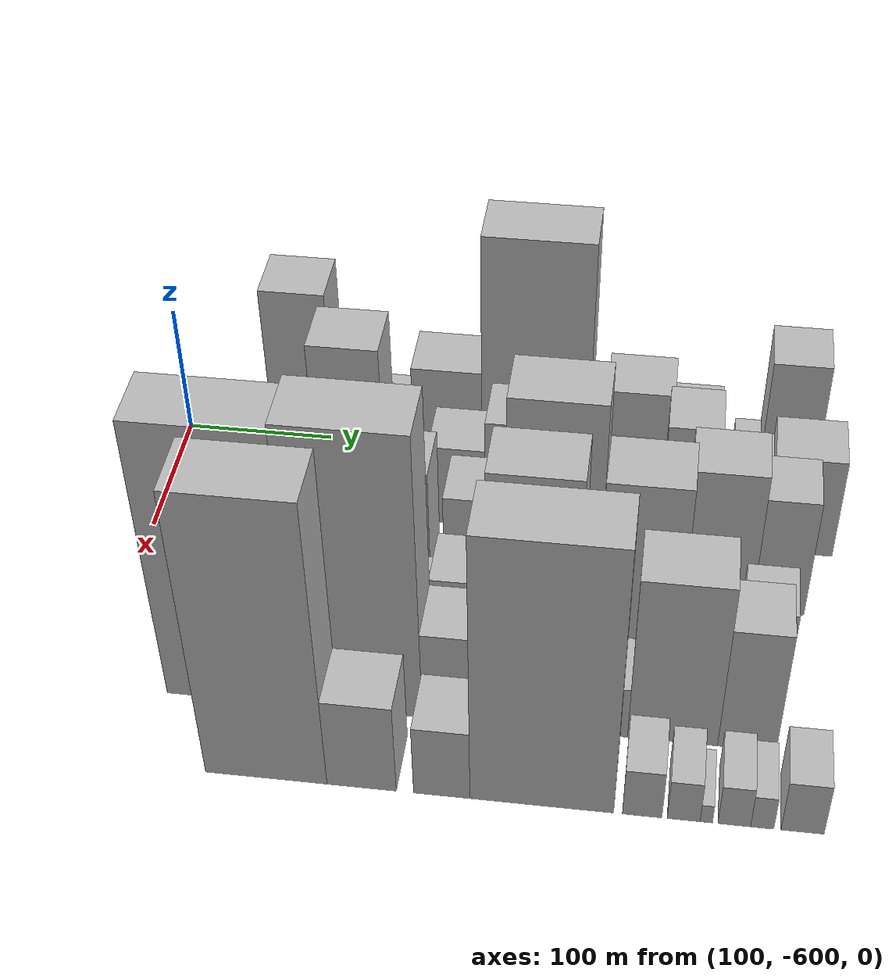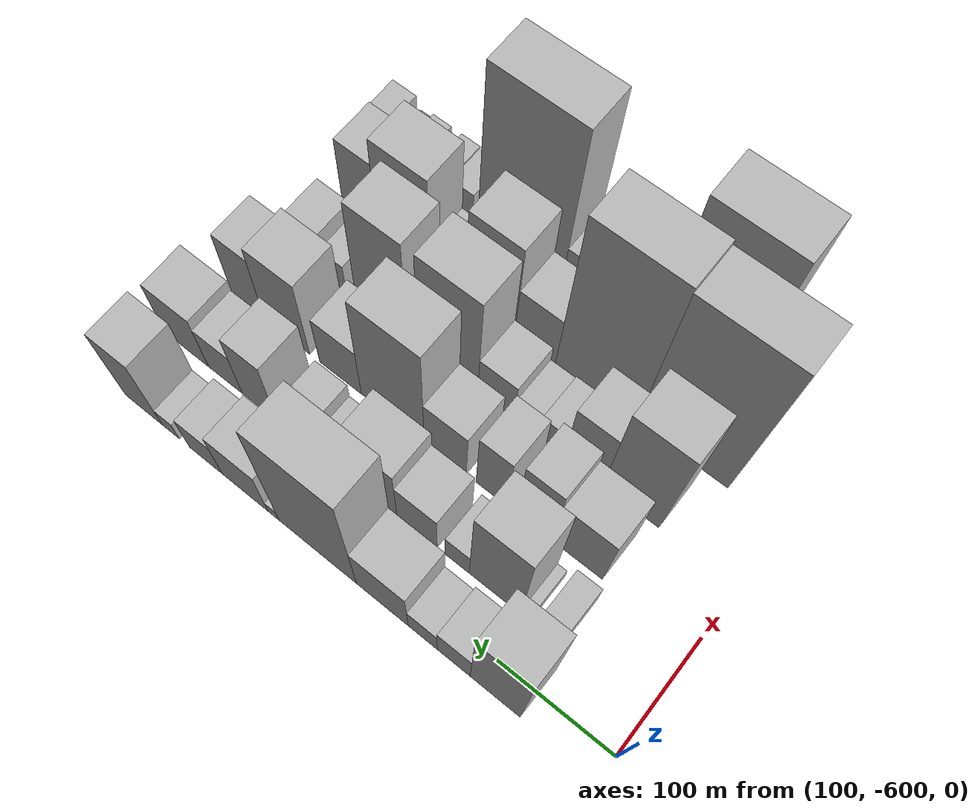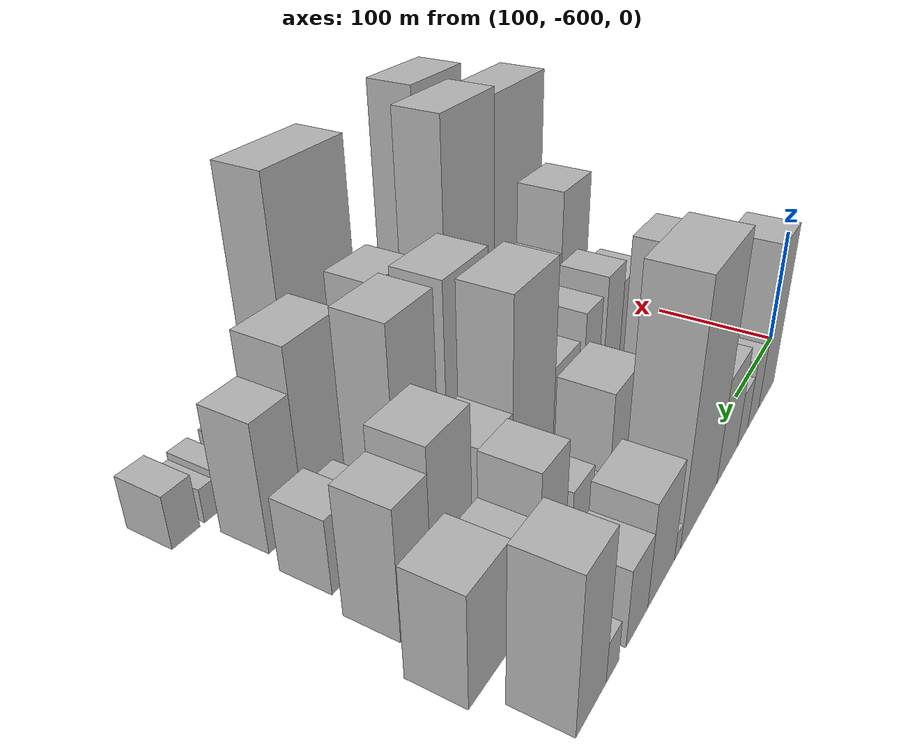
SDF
<sdf version="1.6">
 <world name="default">
  <model name="building_15">
   <static>1</static>
   <pose>100.0000 -513.6216 0 0.000000 0.000000 0.000000</pose>
   <link name="link">
    <pose>0 0 69.00 0 0 0</pose>
    <collision name="collision"><geometry><box><size>40.0000 42.8740 138.0000</size></box></geometry></collision>
    <visual name="visual">
     <cast_shadows>0</cast_shadows>
     <geometry><box><size>40.0000 42.8740 138.0000</size></box></geometry>
     <material>
      <script>
       <uri>model://HANNAS_wall/materials/scripts</uri>
       <uri>model://HANNAS_wall/materials/textures</uri>
       <name>vrc/HANNAS_wall</name>
      </script>
     </material>
    </visual>
   </link>
  </model>
  <model name="building_16">
   <static>1</static>
   <pose>100.0000 -477.8767 0 0.000000 0.000000 0.000000</pose>
   <link name="link">
    <pose>0 0 28.50 0 0 0</pose>
    <collision name="collision"><geometry><box><size>40.0000 28.6157 57.0000</size></box></geometry></collision>
    <visual name="visual">
     <cast_shadows>0</cast_shadows>
     <geometry><box><size>40.0000 28.6157 57.0000</size></box></geometry>
     <material>
      <script>
       <uri>model://HANNAS_wall/materials/scripts</uri>
       <uri>model://HANNAS_wall/materials/textures</uri>
       <name>vrc/HANNAS_wall</name>
      </script>
     </material>
    </visual>
   </link>
  </model>
  <model name="building_17">
   <static>1</static>
   <pose>100.0000 -450.7603 0 0.000000 0.000000 0.000000</pose>
   <link name="link">
    <pose>0 0 22.50 0 0 0</pose>
    <collision name="collision"><geometry><box><size>40.0000 25.6171 45.0000</size></box></geometry></collision>
    <visual name="visual">
     <cast_shadows>0</cast_shadows>
     <geometry><box><size>40.0000 25.6171 45.0000</size></box></geometry>
     <material>
      <script>
       <uri>model://HANNAS_wall/materials/scripts</uri>
       <uri>model://HANNAS_wall/materials/textures</uri>
       <name>vrc/HANNAS_wall</name>
      </script>
     </material>
    </visual>
   </link>
  </model>
  <model name="building_18">
   <static>1</static>
   <pose>100.0000 -414.6206 0 0.000000 0.000000 0.000000</pose>
   <link name="link">
    <pose>0 0 42.00 0 0 0</pose>
    <collision name="collision"><geometry><box><size>40.0000 46.6623 84.0000</size></box></geometry></collision>
    <visual name="visual">
     <cast_shadows>0</cast_shadows>
     <geometry><box><size>40.0000 46.6623 84.0000</size></box></geometry>
     <material>
      <script>
       <uri>model://HANNAS_wall/materials/scripts</uri>
       <uri>model://HANNAS_wall/materials/textures</uri>
       <name>vrc/HANNAS_wall</name>
      </script>
     </material>
    </visual>
   </link>
  </model>
  <model name="building_19">
   <static>1</static>
   <pose>100.0000 -355.2714 0 0.000000 0.000000 0.000000</pose>
   <link name="link">
    <pose>0 0 96.00 0 0 0</pose>
    <collision name="collision"><geometry><box><size>40.0000 72.0362 192.0000</size></box></geometry></collision>
    <visual name="visual">
     <cast_shadows>0</cast_shadows>
     <geometry><box><size>40.0000 72.0362 192.0000</size></box></geometry>
     <material>
      <script>
       <uri>model://HANNAS_wall/materials/scripts</uri>
       <uri>model://HANNAS_wall/materials/textures</uri>
       <name>vrc/HANNAS_wall</name>
      </script>
     </material>
    </visual>
   </link>
  </model>
  <model name="building_20">
   <static>1</static>
   <pose>100.0000 -314.0269 0 0.000000 0.000000 0.000000</pose>
   <link name="link">
    <pose>0 0 10.50 0 0 0</pose>
    <collision name="collision"><geometry><box><size>40.0000 10.4528 21.0000</size></box></geometry></collision>
    <visual name="visual">
     <cast_shadows>0</cast_shadows>
     <geometry><box><size>40.0000 10.4528 21.0000</size></box></geometry>
     <material>
      <script>
       <uri>model://HANNAS_wall/materials/scripts</uri>
       <uri>model://HANNAS_wall/materials/textures</uri>
       <name>vrc/HANNAS_wall</name>
      </script>
     </material>
    </visual>
   </link>
  </model>
  <model name="building_21">
   <static>1</static>
   <pose>100.0000 -286.6192 0 0.000000 0.000000 0.000000</pose>
   <link name="link">
    <pose>0 0 39.00 0 0 0</pose>
    <collision name="collision"><geometry><box><size>40.0000 44.3624 78.0000</size></box></geometry></collision>
    <visual name="visual">
     <cast_shadows>0</cast_shadows>
     <geometry><box><size>40.0000 44.3624 78.0000</size></box></geometry>
     <material>
      <script>
       <uri>model://HANNAS_wall/materials/scripts</uri>
       <uri>model://HANNAS_wall/materials/textures</uri>
       <name>vrc/HANNAS_wall</name>
      </script>
     </material>
    </visual>
   </link>
  </model>
  <model name="building_22">
   <static>1</static>
   <pose>100.0000 -248.2549 0 0.000000 0.000000 0.000000</pose>
   <link name="link">
    <pose>0 0 28.50 0 0 0</pose>
    <collision name="collision"><geometry><box><size>40.0000 32.3662 57.0000</size></box></geometry></collision>
    <visual name="visual">
     <cast_shadows>0</cast_shadows>
     <geometry><box><size>40.0000 32.3662 57.0000</size></box></geometry>
     <material>
      <script>
       <uri>model://HANNAS_wall/materials/scripts</uri>
       <uri>model://HANNAS_wall/materials/textures</uri>
       <name>vrc/HANNAS_wall</name>
      </script>
     </material>
    </visual>
   </link>
  </model>
  <model name="building_23">
   <static>1</static>
   <pose>100.0000 -213.4793 0 0.000000 0.000000 0.000000</pose>
   <link name="link">
    <pose>0 0 15.00 0 0 0</pose>
    <collision name="collision"><geometry><box><size>40.0000 17.1850 30.0000</size></box></geometry></collision>
    <visual name="visual">
     <cast_shadows>0</cast_shadows>
     <geometry><box><size>40.0000 17.1850 30.0000</size></box></geometry>
     <material>
      <script>
       <uri>model://HANNAS_wall/materials/scripts</uri>
       <uri>model://HANNAS_wall/materials/textures</uri>
       <name>vrc/HANNAS_wall</name>
      </script>
     </material>
    </visual>
   </link>
  </model>
  <model name="building_24">
   <static>1</static>
   <pose>100.0000 -186.1850 0 0.000000 0.000000 0.000000</pose>
   <link name="link">
    <pose>0 0 55.50 0 0 0</pose>
    <collision name="collision"><geometry><box><size>40.0000 37.4036 111.0000</size></box></geometry></collision>
    <visual name="visual">
     <cast_shadows>0</cast_shadows>
     <geometry><box><size>40.0000 37.4036 111.0000</size></box></geometry>
     <material>
      <script>
       <uri>model://HANNAS_wall/materials/scripts</uri>
       <uri>model://HANNAS_wall/materials/textures</uri>
       <name>vrc/HANNAS_wall</name>
      </script>
     </material>
    </visual>
   </link>
  </model>
  <model name="building_60">
   <static>1</static>
   <pose>155.0000 -517.8775 0 0.000000 0.000000 0.000000</pose>
   <link name="link">
    <pose>0 0 19.50 0 0 0</pose>
    <collision name="collision"><geometry><box><size>40.0000 21.1955 39.0000</size></box></geometry></collision>
    <visual name="visual">
     <cast_shadows>0</cast_shadows>
     <geometry><box><size>40.0000 21.1955 39.0000</size></box></geometry>
     <material>
      <script>
       <uri>model://HANNAS_wall/materials/scripts</uri>
       <uri>model://HANNAS_wall/materials/textures</uri>
       <name>vrc/HANNAS_wall</name>
      </script>
     </material>
    </visual>
   </link>
  </model>
  <model name="building_61">
   <static>1</static>
   <pose>155.0000 -497.1869 0 0.000000 0.000000 0.000000</pose>
   <link name="link">
    <pose>0 0 9.00 0 0 0</pose>
    <collision name="collision"><geometry><box><size>40.0000 8.1856 18.0000</size></box></geometry></collision>
    <visual name="visual">
     <cast_shadows>0</cast_shadows>
     <geometry><box><size>40.0000 8.1856 18.0000</size></box></geometry>
     <material>
      <script>
       <uri>model://HANNAS_wall/materials/scripts</uri>
       <uri>model://HANNAS_wall/materials/textures</uri>
       <name>vrc/HANNAS_wall</name>
      </script>
     </material>
    </visual>
   </link>
  </model>
  <model name="building_62">
   <static>1</static>
   <pose>155.0000 -470.3761 0 0.000000 0.000000 0.000000</pose>
   <link name="link">
    <pose>0 0 70.50 0 0 0</pose>
    <collision name="collision"><geometry><box><size>40.0000 45.4361 141.0000</size></box></geometry></collision>
    <visual name="visual">
     <cast_shadows>0</cast_shadows>
     <geometry><box><size>40.0000 45.4361 141.0000</size></box></geometry>
     <material>
      <script>
       <uri>model://HANNAS_wall/materials/scripts</uri>
       <uri>model://HANNAS_wall/materials/textures</uri>
       <name>vrc/HANNAS_wall</name>
      </script>
     </material>
    </visual>
   </link>
  </model>
  <model name="building_63">
   <static>1</static>
   <pose>155.0000 -436.8138 0 0.000000 0.000000 0.000000</pose>
   <link name="link">
    <pose>0 0 21.00 0 0 0</pose>
    <collision name="collision"><geometry><box><size>40.0000 21.6886 42.0000</size></box></geometry></collision>
    <visual name="visual">
     <cast_shadows>0</cast_shadows>
     <geometry><box><size>40.0000 21.6886 42.0000</size></box></geometry>
     <material>
      <script>
       <uri>model://HANNAS_wall/materials/scripts</uri>
       <uri>model://HANNAS_wall/materials/textures</uri>
       <name>vrc/HANNAS_wall</name>
      </script>
     </material>
    </visual>
   </link>
  </model>
  <model name="building_64">
   <static>1</static>
   <pose>155.0000 -400.5244 0 0.000000 0.000000 0.000000</pose>
   <link name="link">
    <pose>0 0 33.00 0 0 0</pose>
    <collision name="collision"><geometry><box><size>40.0000 36.8902 66.0000</size></box></geometry></collision>
    <visual name="visual">
     <cast_shadows>0</cast_shadows>
     <geometry><box><size>40.0000 36.8902 66.0000</size></box></geometry>
     <material>
      <script>
       <uri>model://HANNAS_wall/materials/scripts</uri>
       <uri>model://HANNAS_wall/materials/textures</uri>
       <name>vrc/HANNAS_wall</name>
      </script>
     </material>
    </visual>
   </link>
  </model>
  <model name="building_65">
   <static>1</static>
   <pose>155.0000 -357.3834 0 0.000000 0.000000 0.000000</pose>
   <link name="link">
    <pose>0 0 45.00 0 0 0</pose>
    <collision name="collision"><geometry><box><size>40.0000 49.3919 90.0000</size></box></geometry></collision>
    <visual name="visual">
     <cast_shadows>0</cast_shadows>
     <geometry><box><size>40.0000 49.3919 90.0000</size></box></geometry>
     <material>
      <script>
       <uri>model://HANNAS_wall/materials/scripts</uri>
       <uri>model://HANNAS_wall/materials/textures</uri>
       <name>vrc/HANNAS_wall</name>
      </script>
     </material>
    </visual>
   </link>
  </model>
  <model name="building_66">
   <static>1</static>
   <pose>155.0000 -329.3998 0 0.000000 0.000000 0.000000</pose>
   <link name="link">
    <pose>0 0 7.50 0 0 0</pose>
    <collision name="collision"><geometry><box><size>40.0000 6.5753 15.0000</size></box></geometry></collision>
    <visual name="visual">
     <cast_shadows>0</cast_shadows>
     <geometry><box><size>40.0000 6.5753 15.0000</size></box></geometry>
     <material>
      <script>
       <uri>model://HANNAS_wall/materials/scripts</uri>
       <uri>model://HANNAS_wall/materials/textures</uri>
       <name>vrc/HANNAS_wall</name>
      </script>
     </material>
    </visual>
   </link>
  </model>
  <model name="building_67">
   <static>1</static>
   <pose>155.0000 -316.3000 0 0.000000 0.000000 0.000000</pose>
   <link name="link">
    <pose>0 0 16.50 0 0 0</pose>
    <collision name="collision"><geometry><box><size>40.0000 19.6243 33.0000</size></box></geometry></collision>
    <visual name="visual">
     <cast_shadows>0</cast_shadows>
     <geometry><box><size>40.0000 19.6243 33.0000</size></box></geometry>
     <material>
      <script>
       <uri>model://HANNAS_wall/materials/scripts</uri>
       <uri>model://HANNAS_wall/materials/textures</uri>
       <name>vrc/HANNAS_wall</name>
      </script>
     </material>
    </visual>
   </link>
  </model>
  <model name="building_68">
   <static>1</static>
   <pose>155.0000 -291.5817 0 0.000000 0.000000 0.000000</pose>
   <link name="link">
    <pose>0 0 27.00 0 0 0</pose>
    <collision name="collision"><geometry><box><size>40.0000 29.8122 54.0000</size></box></geometry></collision>
    <visual name="visual">
     <cast_shadows>0</cast_shadows>
     <geometry><box><size>40.0000 29.8122 54.0000</size></box></geometry>
     <material>
      <script>
       <uri>model://HANNAS_wall/materials/scripts</uri>
       <uri>model://HANNAS_wall/materials/textures</uri>
       <name>vrc/HANNAS_wall</name>
      </script>
     </material>
    </visual>
   </link>
  </model>
  <model name="building_69">
   <static>1</static>
   <pose>155.0000 -250.6024 0 0.000000 0.000000 0.000000</pose>
   <link name="link">
    <pose>0 0 49.50 0 0 0</pose>
    <collision name="collision"><geometry><box><size>40.0000 34.1465 99.0000</size></box></geometry></collision>
    <visual name="visual">
     <cast_shadows>0</cast_shadows>
     <geometry><box><size>40.0000 34.1465 99.0000</size></box></geometry>
     <material>
      <script>
       <uri>model://HANNAS_wall/materials/scripts</uri>
       <uri>model://HANNAS_wall/materials/textures</uri>
       <name>vrc/HANNAS_wall</name>
      </script>
     </material>
    </visual>
   </link>
  </model>
  <model name="building_70">
   <static>1</static>
   <pose>155.0000 -216.5741 0 0.000000 0.000000 0.000000</pose>
   <link name="link">
    <pose>0 0 33.00 0 0 0</pose>
    <collision name="collision"><geometry><box><size>40.0000 33.9102 66.0000</size></box></geometry></collision>
    <visual name="visual">
     <cast_shadows>0</cast_shadows>
     <geometry><box><size>40.0000 33.9102 66.0000</size></box></geometry>
     <material>
      <script>
       <uri>model://HANNAS_wall/materials/scripts</uri>
       <uri>model://HANNAS_wall/materials/textures</uri>
       <name>vrc/HANNAS_wall</name>
      </script>
     </material>
    </visual>
   </link>
  </model>
  <model name="building_71">
   <static>1</static>
   <pose>155.0000 -177.3842 0 0.000000 0.000000 0.000000</pose>
   <link name="link">
    <pose>0 0 40.50 0 0 0</pose>
    <collision name="collision"><geometry><box><size>40.0000 44.4696 81.0000</size></box></geometry></collision>
    <visual name="visual">
     <cast_shadows>0</cast_shadows>
     <geometry><box><size>40.0000 44.4696 81.0000</size></box></geometry>
     <material>
      <script>
       <uri>model://HANNAS_wall/materials/scripts</uri>
       <uri>model://HANNAS_wall/materials/textures</uri>
       <name>vrc/HANNAS_wall</name>
      </script>
     </material>
    </visual>
   </link>
  </model>
  <model name="building_111">
   <static>1</static>
   <pose>210.0000 -500.7694 0 0.000000 0.000000 0.000000</pose>
   <link name="link">
    <pose>0 0 43.50 0 0 0</pose>
    <collision name="collision"><geometry><box><size>40.0000 43.8269 87.0000</size></box></geometry></collision>
    <visual name="visual">
     <cast_shadows>0</cast_shadows>
     <geometry><box><size>40.0000 43.8269 87.0000</size></box></geometry>
     <material>
      <script>
       <uri>model://HANNAS_wall/materials/scripts</uri>
       <uri>model://HANNAS_wall/materials/textures</uri>
       <name>vrc/HANNAS_wall</name>
      </script>
     </material>
    </visual>
   </link>
  </model>
  <model name="building_112">
   <static>1</static>
   <pose>210.0000 -463.0493 0 0.000000 0.000000 0.000000</pose>
   <link name="link">
    <pose>0 0 52.50 0 0 0</pose>
    <collision name="collision"><geometry><box><size>40.0000 31.6133 105.0000</size></box></geometry></collision>
    <visual name="visual">
     <cast_shadows>0</cast_shadows>
     <geometry><box><size>40.0000 31.6133 105.0000</size></box></geometry>
     <material>
      <script>
       <uri>model://HANNAS_wall/materials/scripts</uri>
       <uri>model://HANNAS_wall/materials/textures</uri>
       <name>vrc/HANNAS_wall</name>
      </script>
     </material>
    </visual>
   </link>
  </model>
  <model name="building_113">
   <static>1</static>
   <pose>210.0000 -442.8718 0 0.000000 0.000000 0.000000</pose>
   <link name="link">
    <pose>0 0 10.50 0 0 0</pose>
    <collision name="collision"><geometry><box><size>40.0000 8.7417 21.0000</size></box></geometry></collision>
    <visual name="visual">
     <cast_shadows>0</cast_shadows>
     <geometry><box><size>40.0000 8.7417 21.0000</size></box></geometry>
     <material>
      <script>
       <uri>model://HANNAS_wall/materials/scripts</uri>
       <uri>model://HANNAS_wall/materials/textures</uri>
       <name>vrc/HANNAS_wall</name>
      </script>
     </material>
    </visual>
   </link>
  </model>
  <model name="building_114">
   <static>1</static>
   <pose>210.0000 -424.3715 0 0.000000 0.000000 0.000000</pose>
   <link name="link">
    <pose>0 0 46.50 0 0 0</pose>
    <collision name="collision"><geometry><box><size>40.0000 28.2588 93.0000</size></box></geometry></collision>
    <visual name="visual">
     <cast_shadows>0</cast_shadows>
     <geometry><box><size>40.0000 28.2588 93.0000</size></box></geometry>
     <material>
      <script>
       <uri>model://HANNAS_wall/materials/scripts</uri>
       <uri>model://HANNAS_wall/materials/textures</uri>
       <name>vrc/HANNAS_wall</name>
      </script>
     </material>
    </visual>
   </link>
  </model>
  <model name="building_115">
   <static>1</static>
   <pose>210.0000 -381.7486 0 0.000000 0.000000 0.000000</pose>
   <link name="link">
    <pose>0 0 37.50 0 0 0</pose>
    <collision name="collision"><geometry><box><size>40.0000 38.9871 75.0000</size></box></geometry></collision>
    <visual name="visual">
     <cast_shadows>0</cast_shadows>
     <geometry><box><size>40.0000 38.9871 75.0000</size></box></geometry>
     <material>
      <script>
       <uri>model://HANNAS_wall/materials/scripts</uri>
       <uri>model://HANNAS_wall/materials/textures</uri>
       <name>vrc/HANNAS_wall</name>
      </script>
     </material>
    </visual>
   </link>
  </model>
  <model name="building_116">
   <static>1</static>
   <pose>210.0000 -332.3035 0 0.000000 0.000000 0.000000</pose>
   <link name="link">
    <pose>0 0 79.50 0 0 0</pose>
    <collision name="collision"><geometry><box><size>40.0000 59.9031 159.0000</size></box></geometry></collision>
    <visual name="visual">
     <cast_shadows>0</cast_shadows>
     <geometry><box><size>40.0000 59.9031 159.0000</size></box></geometry>
     <material>
      <script>
       <uri>model://HANNAS_wall/materials/scripts</uri>
       <uri>model://HANNAS_wall/materials/textures</uri>
       <name>vrc/HANNAS_wall</name>
      </script>
     </material>
    </visual>
   </link>
  </model>
  <model name="building_117">
   <static>1</static>
   <pose>210.0000 -281.9909 0 0.000000 0.000000 0.000000</pose>
   <link name="link">
    <pose>0 0 37.50 0 0 0</pose>
    <collision name="collision"><geometry><box><size>40.0000 40.7219 75.0000</size></box></geometry></collision>
    <visual name="visual">
     <cast_shadows>0</cast_shadows>
     <geometry><box><size>40.0000 40.7219 75.0000</size></box></geometry>
     <material>
      <script>
       <uri>model://HANNAS_wall/materials/scripts</uri>
       <uri>model://HANNAS_wall/materials/textures</uri>
       <name>vrc/HANNAS_wall</name>
      </script>
     </material>
    </visual>
   </link>
  </model>
  <model name="building_118">
   <static>1</static>
   <pose>210.0000 -228.9417 0 0.000000 0.000000 0.000000</pose>
   <link name="link">
    <pose>0 0 57.00 0 0 0</pose>
    <collision name="collision"><geometry><box><size>40.0000 45.3765 114.0000</size></box></geometry></collision>
    <visual name="visual">
     <cast_shadows>0</cast_shadows>
     <geometry><box><size>40.0000 45.3765 114.0000</size></box></geometry>
     <material>
      <script>
       <uri>model://HANNAS_wall/materials/scripts</uri>
       <uri>model://HANNAS_wall/materials/textures</uri>
       <name>vrc/HANNAS_wall</name>
      </script>
     </material>
    </visual>
   </link>
  </model>
  <model name="building_119">
   <static>1</static>
   <pose>210.0000 -190.0148 0 0.000000 0.000000 0.000000</pose>
   <link name="link">
    <pose>0 0 48.00 0 0 0</pose>
    <collision name="collision"><geometry><box><size>40.0000 32.4773 96.0000</size></box></geometry></collision>
    <visual name="visual">
     <cast_shadows>0</cast_shadows>
     <geometry><box><size>40.0000 32.4773 96.0000</size></box></geometry>
     <material>
      <script>
       <uri>model://HANNAS_wall/materials/scripts</uri>
       <uri>model://HANNAS_wall/materials/textures</uri>
       <name>vrc/HANNAS_wall</name>
      </script>
     </material>
    </visual>
   </link>
  </model>
  <model name="building_163">
   <static>1</static>
   <pose>265.0000 -507.3159 0 0.000000 0.000000 0.000000</pose>
   <link name="link">
    <pose>0 0 73.50 0 0 0</pose>
    <collision name="collision"><geometry><box><size>40.0000 49.2319 147.0000</size></box></geometry></collision>
    <visual name="visual">
     <cast_shadows>0</cast_shadows>
     <geometry><box><size>40.0000 49.2319 147.0000</size></box></geometry>
     <material>
      <script>
       <uri>model://HANNAS_wall/materials/scripts</uri>
       <uri>model://HANNAS_wall/materials/textures</uri>
       <name>vrc/HANNAS_wall</name>
      </script>
     </material>
    </visual>
   </link>
  </model>
  <model name="building_164">
   <static>1</static>
   <pose>265.0000 -465.2623 0 0.000000 0.000000 0.000000</pose>
   <link name="link">
    <pose>0 0 48.00 0 0 0</pose>
    <collision name="collision"><geometry><box><size>40.0000 34.8753 96.0000</size></box></geometry></collision>
    <visual name="visual">
     <cast_shadows>0</cast_shadows>
     <geometry><box><size>40.0000 34.8753 96.0000</size></box></geometry>
     <material>
      <script>
       <uri>model://HANNAS_wall/materials/scripts</uri>
       <uri>model://HANNAS_wall/materials/textures</uri>
       <name>vrc/HANNAS_wall</name>
      </script>
     </material>
    </visual>
   </link>
  </model>
  <model name="building_165">
   <static>1</static>
   <pose>265.0000 -436.1185 0 0.000000 0.000000 0.000000</pose>
   <link name="link">
    <pose>0 0 21.00 0 0 0</pose>
    <collision name="collision"><geometry><box><size>40.0000 23.4123 42.0000</size></box></geometry></collision>
    <visual name="visual">
     <cast_shadows>0</cast_shadows>
     <geometry><box><size>40.0000 23.4123 42.0000</size></box></geometry>
     <material>
      <script>
       <uri>model://HANNAS_wall/materials/scripts</uri>
       <uri>model://HANNAS_wall/materials/textures</uri>
       <name>vrc/HANNAS_wall</name>
      </script>
     </material>
    </visual>
   </link>
  </model>
  <model name="building_166">
   <static>1</static>
   <pose>265.0000 -413.1899 0 0.000000 0.000000 0.000000</pose>
   <link name="link">
    <pose>0 0 19.50 0 0 0</pose>
    <collision name="collision"><geometry><box><size>40.0000 22.4448 39.0000</size></box></geometry></collision>
    <visual name="visual">
     <cast_shadows>0</cast_shadows>
     <geometry><box><size>40.0000 22.4448 39.0000</size></box></geometry>
     <material>
      <script>
       <uri>model://HANNAS_wall/materials/scripts</uri>
       <uri>model://HANNAS_wall/materials/textures</uri>
       <name>vrc/HANNAS_wall</name>
      </script>
     </material>
    </visual>
   </link>
  </model>
  <model name="building_167">
   <static>1</static>
   <pose>265.0000 -385.0711 0 0.000000 0.000000 0.000000</pose>
   <link name="link">
    <pose>0 0 30.00 0 0 0</pose>
    <collision name="collision"><geometry><box><size>40.0000 33.7928 60.0000</size></box></geometry></collision>
    <visual name="visual">
     <cast_shadows>0</cast_shadows>
     <geometry><box><size>40.0000 33.7928 60.0000</size></box></geometry>
     <material>
      <script>
       <uri>model://HANNAS_wall/materials/scripts</uri>
       <uri>model://HANNAS_wall/materials/textures</uri>
       <name>vrc/HANNAS_wall</name>
      </script>
     </material>
    </visual>
   </link>
  </model>
  <model name="building_168">
   <static>1</static>
   <pose>265.0000 -339.7269 0 0.000000 0.000000 0.000000</pose>
   <link name="link">
    <pose>0 0 75.00 0 0 0</pose>
    <collision name="collision"><geometry><box><size>40.0000 56.8957 150.0000</size></box></geometry></collision>
    <visual name="visual">
     <cast_shadows>0</cast_shadows>
     <geometry><box><size>40.0000 56.8957 150.0000</size></box></geometry>
     <material>
      <script>
       <uri>model://HANNAS_wall/materials/scripts</uri>
       <uri>model://HANNAS_wall/materials/textures</uri>
       <name>vrc/HANNAS_wall</name>
      </script>
     </material>
    </visual>
   </link>
  </model>
  <model name="building_169">
   <static>1</static>
   <pose>265.0000 -305.8643 0 0.000000 0.000000 0.000000</pose>
   <link name="link">
    <pose>0 0 12.00 0 0 0</pose>
    <collision name="collision"><geometry><box><size>40.0000 10.8294 24.0000</size></box></geometry></collision>
    <visual name="visual">
     <cast_shadows>0</cast_shadows>
     <geometry><box><size>40.0000 10.8294 24.0000</size></box></geometry>
     <material>
      <script>
       <uri>model://HANNAS_wall/materials/scripts</uri>
       <uri>model://HANNAS_wall/materials/textures</uri>
       <name>vrc/HANNAS_wall</name>
      </script>
     </material>
    </visual>
   </link>
  </model>
  <model name="building_170">
   <static>1</static>
   <pose>265.0000 -275.6365 0 0.000000 0.000000 0.000000</pose>
   <link name="link">
    <pose>0 0 75.00 0 0 0</pose>
    <collision name="collision"><geometry><box><size>40.0000 49.6263 150.0000</size></box></geometry></collision>
    <visual name="visual">
     <cast_shadows>0</cast_shadows>
     <geometry><box><size>40.0000 49.6263 150.0000</size></box></geometry>
     <material>
      <script>
       <uri>model://HANNAS_wall/materials/scripts</uri>
       <uri>model://HANNAS_wall/materials/textures</uri>
       <name>vrc/HANNAS_wall</name>
      </script>
     </material>
    </visual>
   </link>
  </model>
  <model name="building_171">
   <static>1</static>
   <pose>265.0000 -229.5233 0 0.000000 0.000000 0.000000</pose>
   <link name="link">
    <pose>0 0 22.50 0 0 0</pose>
    <collision name="collision"><geometry><box><size>40.0000 22.6001 45.0000</size></box></geometry></collision>
    <visual name="visual">
     <cast_shadows>0</cast_shadows>
     <geometry><box><size>40.0000 22.6001 45.0000</size></box></geometry>
     <material>
      <script>
       <uri>model://HANNAS_wall/materials/scripts</uri>
       <uri>model://HANNAS_wall/materials/textures</uri>
       <name>vrc/HANNAS_wall</name>
      </script>
     </material>
    </visual>
   </link>
  </model>
  <model name="building_172">
   <static>1</static>
   <pose>265.0000 -198.6111 0 0.000000 0.000000 0.000000</pose>
   <link name="link">
    <pose>0 0 28.50 0 0 0</pose>
    <collision name="collision"><geometry><box><size>40.0000 31.2242 57.0000</size></box></geometry></collision>
    <visual name="visual">
     <cast_shadows>0</cast_shadows>
     <geometry><box><size>40.0000 31.2242 57.0000</size></box></geometry>
     <material>
      <script>
       <uri>model://HANNAS_wall/materials/scripts</uri>
       <uri>model://HANNAS_wall/materials/textures</uri>
       <name>vrc/HANNAS_wall</name>
      </script>
     </material>
    </visual>
   </link>
  </model>
  <model name="building_209">
   <static>1</static>
   <pose>320.0000 -513.5182 0 0.000000 0.000000 0.000000</pose>
   <link name="link">
    <pose>0 0 108.00 0 0 0</pose>
    <collision name="collision"><geometry><box><size>40.0000 80.4048 216.0000</size></box></geometry></collision>
    <visual name="visual">
     <cast_shadows>0</cast_shadows>
     <geometry><box><size>40.0000 80.4048 216.0000</size></box></geometry>
     <material>
      <script>
       <uri>model://HANNAS_wall/materials/scripts</uri>
       <uri>model://HANNAS_wall/materials/textures</uri>
       <name>vrc/HANNAS_wall</name>
      </script>
     </material>
    </visual>
   </link>
  </model>
  <model name="building_210">
   <static>1</static>
   <pose>320.0000 -436.0626 0 0.000000 0.000000 0.000000</pose>
   <link name="link">
    <pose>0 0 111.00 0 0 0</pose>
    <collision name="collision"><geometry><box><size>40.0000 74.5065 222.0000</size></box></geometry></collision>
    <visual name="visual">
     <cast_shadows>0</cast_shadows>
     <geometry><box><size>40.0000 74.5065 222.0000</size></box></geometry>
     <material>
      <script>
       <uri>model://HANNAS_wall/materials/scripts</uri>
       <uri>model://HANNAS_wall/materials/textures</uri>
       <name>vrc/HANNAS_wall</name>
      </script>
     </material>
    </visual>
   </link>
  </model>
  <model name="building_211">
   <static>1</static>
   <pose>320.0000 -379.5931 0 0.000000 0.000000 0.000000</pose>
   <link name="link">
    <pose>0 0 36.00 0 0 0</pose>
    <collision name="collision"><geometry><box><size>40.0000 38.4325 72.0000</size></box></geometry></collision>
    <visual name="visual">
     <cast_shadows>0</cast_shadows>
     <geometry><box><size>40.0000 38.4325 72.0000</size></box></geometry>
     <material>
      <script>
       <uri>model://HANNAS_wall/materials/scripts</uri>
       <uri>model://HANNAS_wall/materials/textures</uri>
       <name>vrc/HANNAS_wall</name>
      </script>
     </material>
    </visual>
   </link>
  </model>
  <model name="building_212">
   <static>1</static>
   <pose>320.0000 -336.6073 0 0.000000 0.000000 0.000000</pose>
   <link name="link">
    <pose>0 0 66.00 0 0 0</pose>
    <collision name="collision"><geometry><box><size>40.0000 47.5390 132.0000</size></box></geometry></collision>
    <visual name="visual">
     <cast_shadows>0</cast_shadows>
     <geometry><box><size>40.0000 47.5390 132.0000</size></box></geometry>
     <material>
      <script>
       <uri>model://HANNAS_wall/materials/scripts</uri>
       <uri>model://HANNAS_wall/materials/textures</uri>
       <name>vrc/HANNAS_wall</name>
      </script>
     </material>
    </visual>
   </link>
  </model>
  <model name="building_213">
   <static>1</static>
   <pose>320.0000 -306.9684 0 0.000000 0.000000 0.000000</pose>
   <link name="link">
    <pose>0 0 12.00 0 0 0</pose>
    <collision name="collision"><geometry><box><size>40.0000 11.7388 24.0000</size></box></geometry></collision>
    <visual name="visual">
     <cast_shadows>0</cast_shadows>
     <geometry><box><size>40.0000 11.7388 24.0000</size></box></geometry>
     <material>
      <script>
       <uri>model://HANNAS_wall/materials/scripts</uri>
       <uri>model://HANNAS_wall/materials/textures</uri>
       <name>vrc/HANNAS_wall</name>
      </script>
     </material>
    </visual>
   </link>
  </model>
  <model name="building_214">
   <static>1</static>
   <pose>320.0000 -289.1347 0 0.000000 0.000000 0.000000</pose>
   <link name="link">
    <pose>0 0 21.00 0 0 0</pose>
    <collision name="collision"><geometry><box><size>40.0000 23.9287 42.0000</size></box></geometry></collision>
    <visual name="visual">
     <cast_shadows>0</cast_shadows>
     <geometry><box><size>40.0000 23.9287 42.0000</size></box></geometry>
     <material>
      <script>
       <uri>model://HANNAS_wall/materials/scripts</uri>
       <uri>model://HANNAS_wall/materials/textures</uri>
       <name>vrc/HANNAS_wall</name>
      </script>
     </material>
    </visual>
   </link>
  </model>
  <model name="building_215">
   <static>1</static>
   <pose>320.0000 -250.8736 0 0.000000 0.000000 0.000000</pose>
   <link name="link">
    <pose>0 0 66.00 0 0 0</pose>
    <collision name="collision"><geometry><box><size>40.0000 52.5936 132.0000</size></box></geometry></collision>
    <visual name="visual">
     <cast_shadows>0</cast_shadows>
     <geometry><box><size>40.0000 52.5936 132.0000</size></box></geometry>
     <material>
      <script>
       <uri>model://HANNAS_wall/materials/scripts</uri>
       <uri>model://HANNAS_wall/materials/textures</uri>
       <name>vrc/HANNAS_wall</name>
      </script>
     </material>
    </visual>
   </link>
  </model>
  <model name="building_216">
   <static>1</static>
   <pose>320.0000 -207.5885 0 0.000000 0.000000 0.000000</pose>
   <link name="link">
    <pose>0 0 49.50 0 0 0</pose>
    <collision name="collision"><geometry><box><size>40.0000 33.9765 99.0000</size></box></geometry></collision>
    <visual name="visual">
     <cast_shadows>0</cast_shadows>
     <geometry><box><size>40.0000 33.9765 99.0000</size></box></geometry>
     <material>
      <script>
       <uri>model://HANNAS_wall/materials/scripts</uri>
       <uri>model://HANNAS_wall/materials/textures</uri>
       <name>vrc/HANNAS_wall</name>
      </script>
     </material>
    </visual>
   </link>
  </model>
  <model name="building_260">
   <static>1</static>
   <pose>375.0000 -481.0222 0 0.000000 0.000000 0.000000</pose>
   <link name="link">
    <pose>0 0 111.00 0 0 0</pose>
    <collision name="collision"><geometry><box><size>40.0000 71.0292 222.0000</size></box></geometry></collision>
    <visual name="visual">
     <cast_shadows>0</cast_shadows>
     <geometry><box><size>40.0000 71.0292 222.0000</size></box></geometry>
     <material>
      <script>
       <uri>model://HANNAS_wall/materials/scripts</uri>
       <uri>model://HANNAS_wall/materials/textures</uri>
       <name>vrc/HANNAS_wall</name>
      </script>
     </material>
    </visual>
   </link>
  </model>
  <model name="building_261">
   <static>1</static>
   <pose>375.0000 -425.4428 0 0.000000 0.000000 0.000000</pose>
   <link name="link">
    <pose>0 0 36.00 0 0 0</pose>
    <collision name="collision"><geometry><box><size>40.0000 40.1295 72.0000</size></box></geometry></collision>
    <visual name="visual">
     <cast_shadows>0</cast_shadows>
     <geometry><box><size>40.0000 40.1295 72.0000</size></box></geometry>
     <material>
      <script>
       <uri>model://HANNAS_wall/materials/scripts</uri>
       <uri>model://HANNAS_wall/materials/textures</uri>
       <name>vrc/HANNAS_wall</name>
      </script>
     </material>
    </visual>
   </link>
  </model>
  <model name="building_262">
   <static>1</static>
   <pose>375.0000 -379.2287 0 0.000000 0.000000 0.000000</pose>
   <link name="link">
    <pose>0 0 28.50 0 0 0</pose>
    <collision name="collision"><geometry><box><size>40.0000 32.2987 57.0000</size></box></geometry></collision>
    <visual name="visual">
     <cast_shadows>0</cast_shadows>
     <geometry><box><size>40.0000 32.2987 57.0000</size></box></geometry>
     <material>
      <script>
       <uri>model://HANNAS_wall/materials/scripts</uri>
       <uri>model://HANNAS_wall/materials/textures</uri>
       <name>vrc/HANNAS_wall</name>
      </script>
     </material>
    </visual>
   </link>
  </model>
  <model name="building_263">
   <static>1</static>
   <pose>375.0000 -322.2211 0 0.000000 0.000000 0.000000</pose>
   <link name="link">
    <pose>0 0 105.00 0 0 0</pose>
    <collision name="collision"><geometry><box><size>40.0000 81.7166 210.0000</size></box></geometry></collision>
    <visual name="visual">
     <cast_shadows>0</cast_shadows>
     <geometry><box><size>40.0000 81.7166 210.0000</size></box></geometry>
     <material>
      <script>
       <uri>model://HANNAS_wall/materials/scripts</uri>
       <uri>model://HANNAS_wall/materials/textures</uri>
       <name>vrc/HANNAS_wall</name>
      </script>
     </material>
    </visual>
   </link>
  </model>
  <model name="building_264">
   <static>1</static>
   <pose>375.0000 -265.2669 0 0.000000 0.000000 0.000000</pose>
   <link name="link">
    <pose>0 0 19.50 0 0 0</pose>
    <collision name="collision"><geometry><box><size>40.0000 22.1919 39.0000</size></box></geometry></collision>
    <visual name="visual">
     <cast_shadows>0</cast_shadows>
     <geometry><box><size>40.0000 22.1919 39.0000</size></box></geometry>
     <material>
      <script>
       <uri>model://HANNAS_wall/materials/scripts</uri>
       <uri>model://HANNAS_wall/materials/textures</uri>
       <name>vrc/HANNAS_wall</name>
      </script>
     </material>
    </visual>
   </link>
  </model>
  <model name="building_265">
   <static>1</static>
   <pose>375.0000 -241.9616 0 0.000000 0.000000 0.000000</pose>
   <link name="link">
    <pose>0 0 16.50 0 0 0</pose>
    <collision name="collision"><geometry><box><size>40.0000 18.4187 33.0000</size></box></geometry></collision>
    <visual name="visual">
     <cast_shadows>0</cast_shadows>
     <geometry><box><size>40.0000 18.4187 33.0000</size></box></geometry>
     <material>
      <script>
       <uri>model://HANNAS_wall/materials/scripts</uri>
       <uri>model://HANNAS_wall/materials/textures</uri>
       <name>vrc/HANNAS_wall</name>
      </script>
     </material>
    </visual>
   </link>
  </model>
  <model name="building_266">
   <static>1</static>
   <pose>375.0000 -229.2769 0 0.000000 0.000000 0.000000</pose>
   <link name="link">
    <pose>0 0 7.50 0 0 0</pose>
    <collision name="collision"><geometry><box><size>40.0000 6.9507 15.0000</size></box></geometry></collision>
    <visual name="visual">
     <cast_shadows>0</cast_shadows>
     <geometry><box><size>40.0000 6.9507 15.0000</size></box></geometry>
     <material>
      <script>
       <uri>model://HANNAS_wall/materials/scripts</uri>
       <uri>model://HANNAS_wall/materials/textures</uri>
       <name>vrc/HANNAS_wall</name>
      </script>
     </material>
    </visual>
   </link>
  </model>
  <model name="building_267">
   <static>1</static>
   <pose>375.0000 -213.6805 0 0.000000 0.000000 0.000000</pose>
   <link name="link">
    <pose>0 0 16.50 0 0 0</pose>
    <collision name="collision"><geometry><box><size>40.0000 18.2421 33.0000</size></box></geometry></collision>
    <visual name="visual">
     <cast_shadows>0</cast_shadows>
     <geometry><box><size>40.0000 18.2421 33.0000</size></box></geometry>
     <material>
      <script>
       <uri>model://HANNAS_wall/materials/scripts</uri>
       <uri>model://HANNAS_wall/materials/textures</uri>
       <name>vrc/HANNAS_wall</name>
      </script>
     </material>
    </visual>
   </link>
  </model>
  <model name="building_268">
   <static>1</static>
   <pose>375.0000 -198.1153 0 0.000000 0.000000 0.000000</pose>
   <link name="link">
    <pose>0 0 13.50 0 0 0</pose>
    <collision name="collision"><geometry><box><size>40.0000 12.8883 27.0000</size></box></geometry></collision>
    <visual name="visual">
     <cast_shadows>0</cast_shadows>
     <geometry><box><size>40.0000 12.8883 27.0000</size></box></geometry>
     <material>
      <script>
       <uri>model://HANNAS_wall/materials/scripts</uri>
       <uri>model://HANNAS_wall/materials/textures</uri>
       <name>vrc/HANNAS_wall</name>
      </script>
     </material>
    </visual>
   </link>
  </model>
  <model name="building_269">
   <static>1</static>
   <pose>375.0000 -175.7551 0 0.000000 0.000000 0.000000</pose>
   <link name="link">
    <pose>0 0 21.00 0 0 0</pose>
    <collision name="collision"><geometry><box><size>40.0000 23.8321 42.0000</size></box></geometry></collision>
    <visual name="visual">
     <cast_shadows>0</cast_shadows>
     <geometry><box><size>40.0000 23.8321 42.0000</size></box></geometry>
     <material>
      <script>
       <uri>model://HANNAS_wall/materials/scripts</uri>
       <uri>model://HANNAS_wall/materials/textures</uri>
       <name>vrc/HANNAS_wall</name>
      </script>
     </material>
    </visual>
   </link>
  </model>
 </world>
</sdf>
